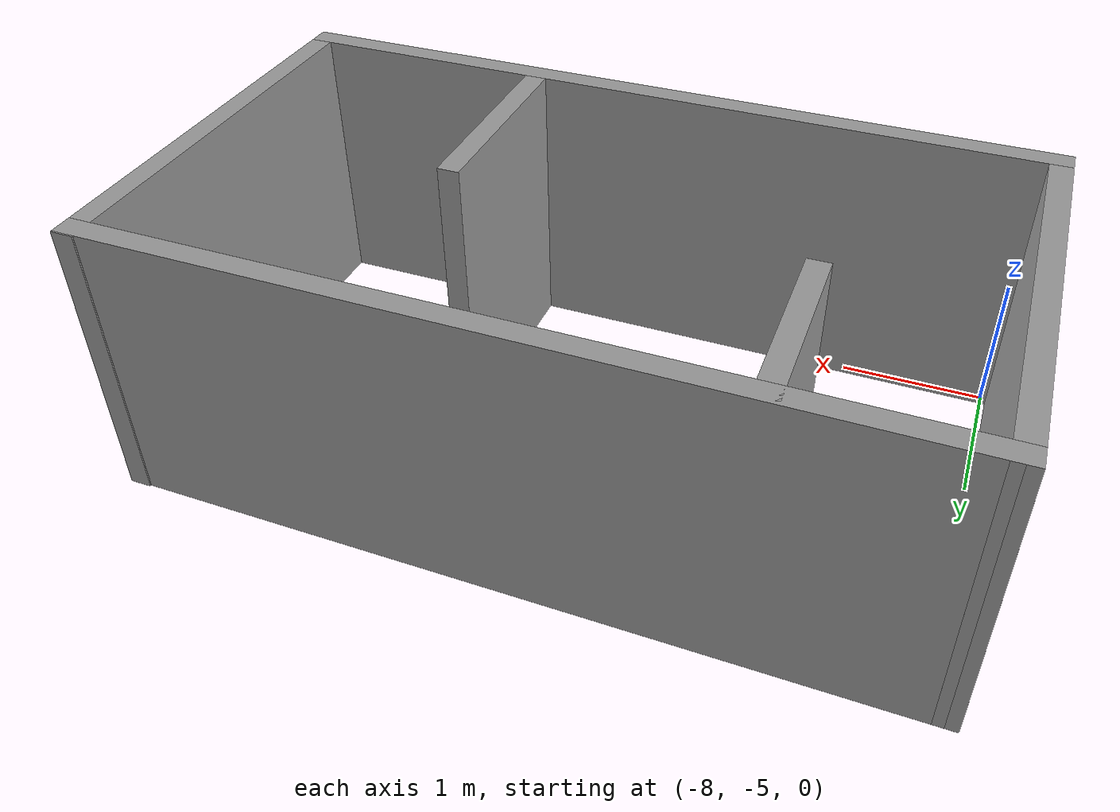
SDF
<?xml version='1.0'?>
<sdf version='1.7'>
  <model name='my_work'>
    <pose>-4.09257 -2.55257 0 0 -0 0</pose>
    <link name='Wall_0'>
      <collision name='Wall_0_Collision'>
        <geometry>
          <box>
            <size>5.47 0.15 2</size>
          </box>
        </geometry>
        <pose>0 0 1 0 -0 0</pose>
      </collision>
      <visual name='Wall_0_Visual'>
        <pose>0 0 1 0 -0 0</pose>
        <geometry>
          <box>
            <size>5.47 0.15 2</size>
          </box>
        </geometry>
        <material>
          <script>
            <uri>file://media/materials/scripts/gazebo.material</uri>
            <name>Gazebo/Grey</name>
          </script>
          <ambient>1 1 1 1</ambient>
        </material>
        <meta>
          <layer>0</layer>
        </meta>
      </visual>
      <pose>-1.35743 0.377571 0 0 -0 3.13971</pose>
    </link>
    <link name='Wall_1'>
      <collision name='Wall_1_Collision'>
        <geometry>
          <box>
            <size>3 0.15 2</size>
          </box>
        </geometry>
        <pose>0 0 1 0 -0 0</pose>
      </collision>
      <visual name='Wall_1_Visual'>
        <pose>0 0 1 0 -0 0</pose>
        <geometry>
          <box>
            <size>3 0.15 2</size>
          </box>
        </geometry>
        <material>
          <script>
            <uri>file://media/materials/scripts/gazebo.material</uri>
            <name>Gazebo/Grey</name>
          </script>
          <ambient>1 1 1 1</ambient>
        </material>
        <meta>
          <layer>0</layer>
        </meta>
      </visual>
      <pose>-4.01743 -1.04243 0 0 -0 -1.5708</pose>
    </link>
    <link name='Wall_2'>
      <collision name='Wall_2_Collision'>
        <geometry>
          <box>
            <size>5.47 0.15 2</size>
          </box>
        </geometry>
        <pose>0 0 1 0 -0 0</pose>
      </collision>
      <visual name='Wall_2_Visual'>
        <pose>0 0 1 0 -0 0</pose>
        <geometry>
          <box>
            <size>5.47 0.15 2</size>
          </box>
        </geometry>
        <material>
          <script>
            <uri>file://media/materials/scripts/gazebo.material</uri>
            <name>Gazebo/Grey</name>
          </script>
          <ambient>1 1 1 1</ambient>
        </material>
        <meta>
          <layer>0</layer>
        </meta>
      </visual>
      <pose>-1.35743 -2.47243 0 0 -0 -0.00188</pose>
    </link>
    <link name='Wall_3'>
      <collision name='Wall_3_Collision'>
        <geometry>
          <box>
            <size>3 0.15 2</size>
          </box>
        </geometry>
        <pose>0 0 1 0 -0 0</pose>
      </collision>
      <visual name='Wall_3_Visual'>
        <pose>0 0 1 0 -0 0</pose>
        <geometry>
          <box>
            <size>3 0.15 2</size>
          </box>
        </geometry>
        <material>
          <script>
            <uri>file://media/materials/scripts/gazebo.material</uri>
            <name>Gazebo/Grey</name>
          </script>
          <ambient>1 1 1 1</ambient>
        </material>
        <meta>
          <layer>0</layer>
        </meta>
      </visual>
      <pose>1.30257 -1.04243 0 0 -0 1.5708</pose>
    </link>
    <link name='Wall_5'>
      <collision name='Wall_5_Collision'>
        <geometry>
          <box>
            <size>1.25 0.15 2</size>
          </box>
        </geometry>
        <pose>0 0 1 0 -0 0</pose>
      </collision>
      <visual name='Wall_5_Visual'>
        <pose>0 0 1 0 -0 0</pose>
        <geometry>
          <box>
            <size>1.25 0.15 2</size>
          </box>
        </geometry>
        <material>
          <script>
            <uri>file://media/materials/scripts/gazebo.material</uri>
            <name>Gazebo/Grey</name>
          </script>
          <ambient>1 1 1 1</ambient>
        </material>
        <meta>
          <layer>0</layer>
        </meta>
      </visual>
      <pose>-2.81743 -0.187429 0 0 -0 -1.5708</pose>
    </link>
    <link name='Wall_7'>
      <collision name='Wall_7_Collision'>
        <geometry>
          <box>
            <size>1.5 0.15 2</size>
          </box>
        </geometry>
        <pose>0 0 1 0 -0 0</pose>
      </collision>
      <visual name='Wall_7_Visual'>
        <pose>0 0 1 0 -0 0</pose>
        <geometry>
          <box>
            <size>1.5 0.15 2</size>
          </box>
        </geometry>
        <material>
          <script>
            <uri>file://media/materials/scripts/gazebo.material</uri>
            <name>Gazebo/Grey</name>
          </script>
          <ambient>1 1 1 1</ambient>
        </material>
        <meta>
          <layer>0</layer>
        </meta>
      </visual>
      <pose>-0.447432 -1.73243 0 0 -0 1.5708</pose>
    </link>
    <static>1</static>
  </model>
</sdf>
